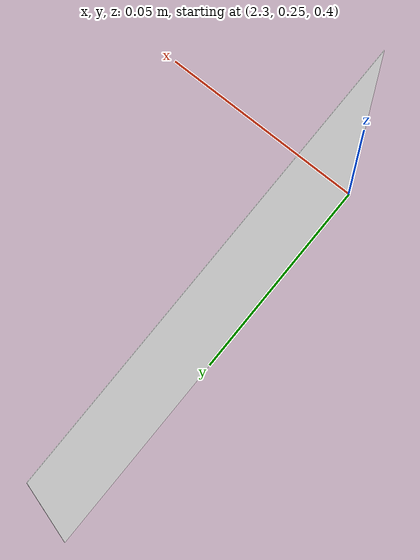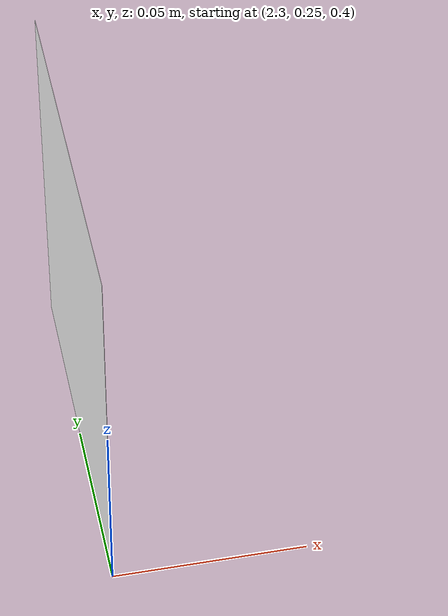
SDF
<?xml version="1.0" ?>
<sdf version="1.4">
  <!-- We use a custom world for the rrbot so that the camera angle is launched correctly -->

  <world name="default">
    <!-- Included light -->
    <include>
      <uri>https://fuel.gazebosim.org/1.0/OpenRobotics/models/Sun</uri>
    </include>

    <!-- Included model -->
    <include>
      <uri>https://fuel.gazebosim.org/1.0/OpenRobotics/models/Ground Plane</uri>
    </include>

    <!-- Our Modifications vvvvvv -->
    <include>
      <uri>
        model://arucotag
      </uri>
      <name>arucotag</name>
      <pose>2.3 0.3 0.45 0 0 3.14</pose>

    </include>
    <!-- Our Modifications ^^^^^ -->
    <gravity>0 0 0</gravity>

    <!-- Focus camera on tall pendulum -->
    <gui fullscreen='0'>
      <camera name='user_camera'>
        <pose>4.927360 -4.376610 3.740080 0.000000 0.275643 2.356190</pose>
        <view_controller>orbit</view_controller>
      </camera>
    </gui>

    <!-- World control -->

  </world>
</sdf>

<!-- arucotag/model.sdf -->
<sdf version='1.9'>
  <model name='arucotag'>
    <static>true</static>
    <pose>0 0 0.001 0 0 0</pose>
    <link name='base'>
      <visual name='base_visual'>
        <geometry>
          <plane>
            <normal>1 0 0 </normal>
            <size>0.1 0.1</size>
          </plane>
        </geometry>
        <material>
          <diffuse>1 1 1 1</diffuse>
          <specular>0.4 0.4 0.4 1</specular>
          <pbr>
            <metal>
              <albedo_map>model://arucotag/aruco-201.png</albedo_map>
            </metal>
          </pbr>
        </material>
      </visual>
    </link>
  </model>
</sdf>
